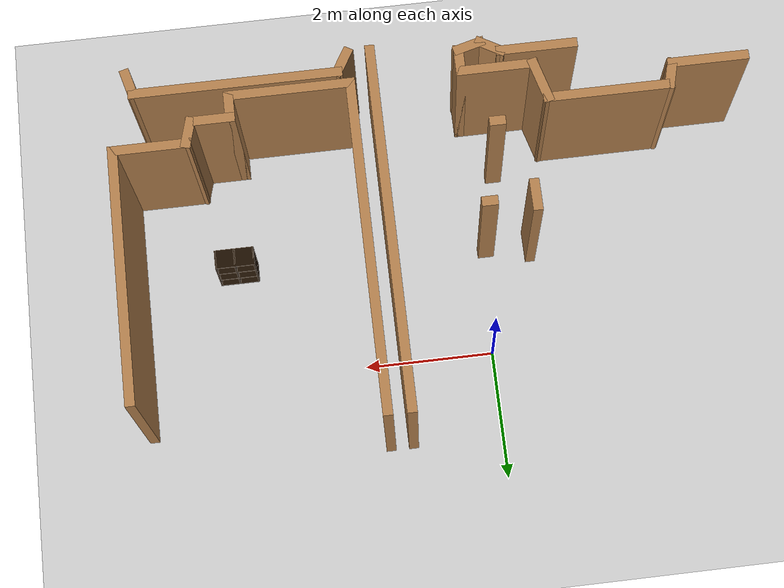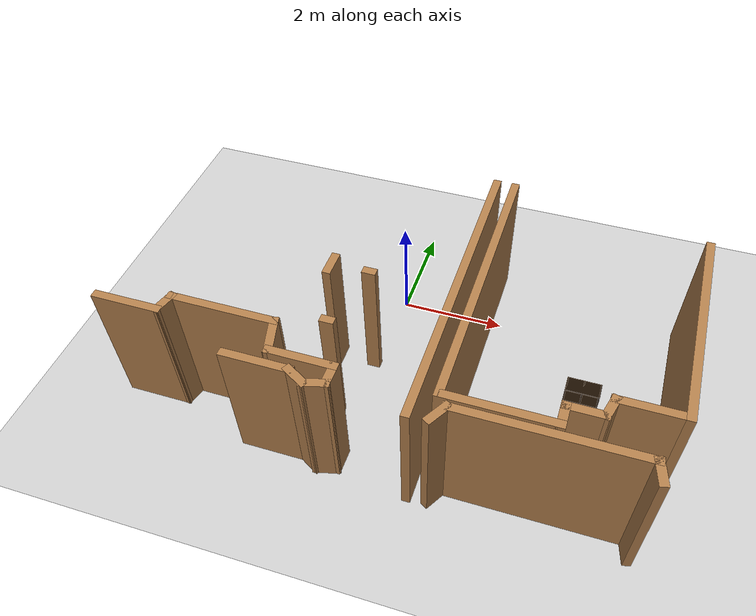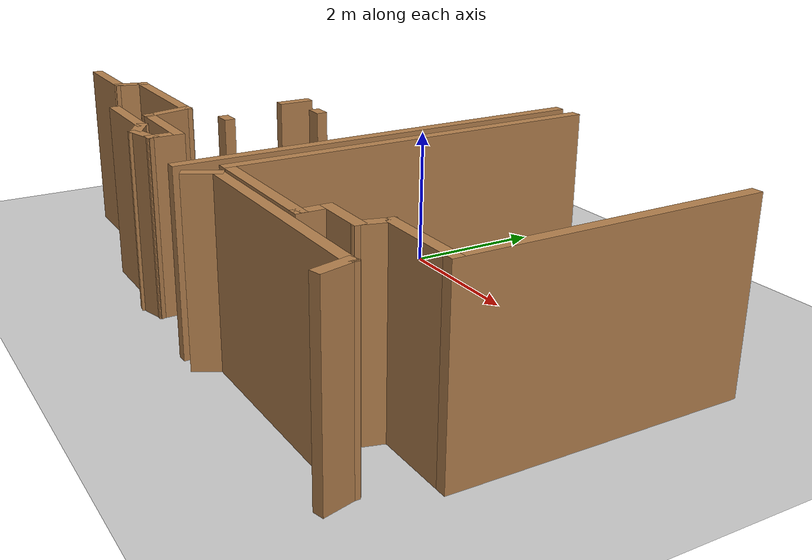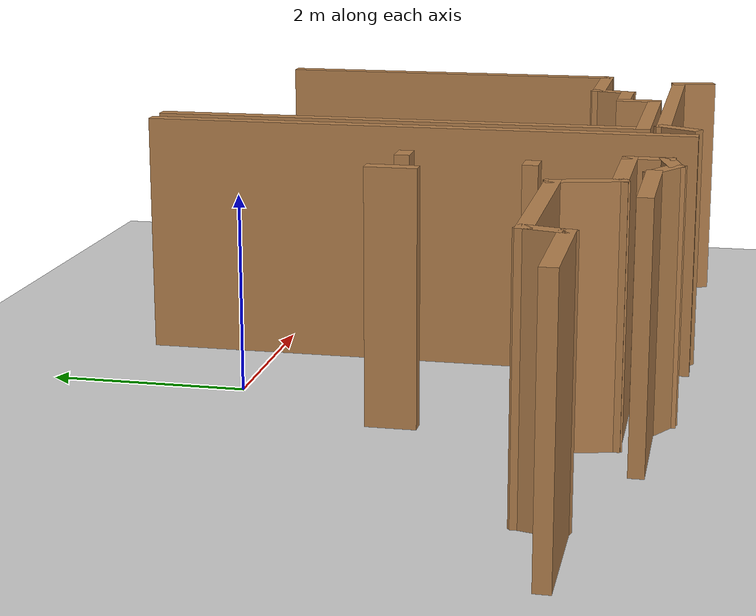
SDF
<sdf version="1.6">
 <world name="default">
  <model name="ground_plane">
   <static>1</static>
   <link name="link">
    <collision name="collision">
     <geometry><plane><normal>0 0 1</normal><size>100 100</size></plane></geometry>
     <surface><friction><ode><mu>100</mu><mu2>50</mu2></ode></friction></surface>
    </collision>
    <visual name="visual">
     <cast_shadows>0</cast_shadows>
     <geometry><plane><normal>0 0 1</normal><size>100 100</size></plane></geometry>
     <material>
      <script><uri>file://media/materials/scripts/gazebo.material</uri><name>Gazebo/Grey</name></script>
     </material>
    </visual>
   </link>
  </model>
  <model name="map_31">
   <link name="Wall_132">
    <pose>-1.39156 -1.38804 0 0 0 -1.5708</pose>
    <visual name="Wall_132_Visual">
     <pose>0 0 1.25 0 -0 0</pose>
     <geometry><box><size>0.5 0.15 2.5</size></box></geometry>
     <material>
      <script><uri>file://media/materials/scripts/gazebo.material</uri><name>Gazebo/Wood</name></script>
      <ambient>1 1 1 1</ambient>
      <shader type="pixel"/>
     </material>
     <meta><layer>0</layer></meta>
    </visual>
    <collision name="Wall_132_Collision">
     <pose>0 0 1.25 0 -0 0</pose>
     <geometry><box><size>0.5 0.15 2.5</size></box></geometry>
     <surface>
      <friction>
       <ode><mu>1</mu><mu2>1</mu2><fdir1>0 0 0</fdir1><slip1>0</slip1><slip2>0</slip2></ode>
       <torsional>
        <coefficient>1</coefficient>
        <patch_radius>0</patch_radius>
        <surface_radius>0</surface_radius>
        <use_patch_radius>1</use_patch_radius>
        <ode><slip>0</slip></ode>
       </torsional>
      </friction>
      <bounce><restitution_coefficient>0</restitution_coefficient><threshold>1e+06</threshold></bounce>
      <contact>
       <collide_without_contact>0</collide_without_contact>
       <collide_without_contact_bitmask>1</collide_without_contact_bitmask>
       <collide_bitmask>1</collide_bitmask>
       <ode>
        <soft_cfm>0</soft_cfm>
        <soft_erp>0.2</soft_erp>
        <kp>1e+13</kp>
        <kd>1</kd>
        <max_vel>0.01</max_vel>
        <min_depth>0</min_depth>
       </ode>
       <bullet>
        <split_impulse>1</split_impulse>
        <split_impulse_penetration_threshold>-0.01</split_impulse_penetration_threshold>
        <soft_cfm>0</soft_cfm>
        <soft_erp>0.2</soft_erp>
        <kp>1e+13</kp>
        <kd>1</kd>
       </bullet>
      </contact>
     </surface>
    </collision>
   </link>
   <link name="Wall_134">
    <pose>-0.699161 -1.36599 0 0 -0 0</pose>
    <visual name="Wall_134_Visual">
     <pose>0 0 1.25 0 -0 0</pose>
     <geometry><box><size>0.25 0.15 2.5</size></box></geometry>
     <material>
      <script><uri>file://media/materials/scripts/gazebo.material</uri><name>Gazebo/Wood</name></script>
      <ambient>1 1 1 1</ambient>
      <shader type="pixel"/>
     </material>
     <meta><layer>0</layer></meta>
    </visual>
    <collision name="Wall_134_Collision">
     <pose>0 0 1.25 0 -0 0</pose>
     <geometry><box><size>0.25 0.15 2.5</size></box></geometry>
     <surface>
      <friction>
       <ode><mu>1</mu><mu2>1</mu2><fdir1>0 0 0</fdir1><slip1>0</slip1><slip2>0</slip2></ode>
       <torsional>
        <coefficient>1</coefficient>
        <patch_radius>0</patch_radius>
        <surface_radius>0</surface_radius>
        <use_patch_radius>1</use_patch_radius>
        <ode><slip>0</slip></ode>
       </torsional>
      </friction>
      <bounce><restitution_coefficient>0</restitution_coefficient><threshold>1e+06</threshold></bounce>
      <contact>
       <collide_without_contact>0</collide_without_contact>
       <collide_without_contact_bitmask>1</collide_without_contact_bitmask>
       <collide_bitmask>1</collide_bitmask>
       <ode>
        <soft_cfm>0</soft_cfm>
        <soft_erp>0.2</soft_erp>
        <kp>1e+13</kp>
        <kd>1</kd>
        <max_vel>0.01</max_vel>
        <min_depth>0</min_depth>
       </ode>
       <bullet>
        <split_impulse>1</split_impulse>
        <split_impulse_penetration_threshold>-0.01</split_impulse_penetration_threshold>
        <soft_cfm>0</soft_cfm>
        <soft_erp>0.2</soft_erp>
        <kp>1e+13</kp>
        <kd>1</kd>
       </bullet>
      </contact>
     </surface>
    </collision>
   </link>
   <link name="Wall_136">
    <pose>-0.974473 -2.62019 0 0 -0 0</pose>
    <visual name="Wall_136_Visual">
     <pose>0 0 1.25 0 -0 0</pose>
     <geometry><box><size>0.25 0.15 2.5</size></box></geometry>
     <material>
      <script><uri>file://media/materials/scripts/gazebo.material</uri><name>Gazebo/Wood</name></script>
      <ambient>1 1 1 1</ambient>
      <shader type="pixel"/>
     </material>
     <meta><layer>0</layer></meta>
    </visual>
    <collision name="Wall_136_Collision">
     <pose>0 0 1.25 0 -0 0</pose>
     <geometry><box><size>0.25 0.15 2.5</size></box></geometry>
     <surface>
      <friction>
       <ode><mu>1</mu><mu2>1</mu2><fdir1>0 0 0</fdir1><slip1>0</slip1><slip2>0</slip2></ode>
       <torsional>
        <coefficient>1</coefficient>
        <patch_radius>0</patch_radius>
        <surface_radius>0</surface_radius>
        <use_patch_radius>1</use_patch_radius>
        <ode><slip>0</slip></ode>
       </torsional>
      </friction>
      <bounce><restitution_coefficient>0</restitution_coefficient><threshold>1e+06</threshold></bounce>
      <contact>
       <collide_without_contact>0</collide_without_contact>
       <collide_without_contact_bitmask>1</collide_without_contact_bitmask>
       <collide_bitmask>1</collide_bitmask>
       <ode>
        <soft_cfm>0</soft_cfm>
        <soft_erp>0.2</soft_erp>
        <kp>1e+13</kp>
        <kd>1</kd>
        <max_vel>0.01</max_vel>
        <min_depth>0</min_depth>
       </ode>
       <bullet>
        <split_impulse>1</split_impulse>
        <split_impulse_penetration_threshold>-0.01</split_impulse_penetration_threshold>
        <soft_cfm>0</soft_cfm>
        <soft_erp>0.2</soft_erp>
        <kp>1e+13</kp>
        <kd>1</kd>
       </bullet>
      </contact>
     </surface>
    </collision>
   </link>
   <link name="Wall_19">
    <pose>-4.27415 -3.24506 0 0 -0 0</pose>
    <visual name="Wall_19_Visual">
     <pose>0 0 1.25 0 -0 0</pose>
     <geometry><box><size>1.25 0.15 2.5</size></box></geometry>
     <material>
      <script><uri>file://media/materials/scripts/gazebo.material</uri><name>Gazebo/Wood</name></script>
      <ambient>1 1 1 1</ambient>
      <shader type="pixel"/>
     </material>
     <meta><layer>0</layer></meta>
    </visual>
    <collision name="Wall_19_Collision">
     <pose>0 0 1.25 0 -0 0</pose>
     <geometry><box><size>1.25 0.15 2.5</size></box></geometry>
     <surface>
      <friction>
       <ode><mu>1</mu><mu2>1</mu2><fdir1>0 0 0</fdir1><slip1>0</slip1><slip2>0</slip2></ode>
       <torsional>
        <coefficient>1</coefficient>
        <patch_radius>0</patch_radius>
        <surface_radius>0</surface_radius>
        <use_patch_radius>1</use_patch_radius>
        <ode><slip>0</slip></ode>
       </torsional>
      </friction>
      <bounce><restitution_coefficient>0</restitution_coefficient><threshold>1e+06</threshold></bounce>
      <contact>
       <collide_without_contact>0</collide_without_contact>
       <collide_without_contact_bitmask>1</collide_without_contact_bitmask>
       <collide_bitmask>1</collide_bitmask>
       <ode>
        <soft_cfm>0</soft_cfm>
        <soft_erp>0.2</soft_erp>
        <kp>1e+13</kp>
        <kd>1</kd>
        <max_vel>0.01</max_vel>
        <min_depth>0</min_depth>
       </ode>
       <bullet>
        <split_impulse>1</split_impulse>
        <split_impulse_penetration_threshold>-0.01</split_impulse_penetration_threshold>
        <soft_cfm>0</soft_cfm>
        <soft_erp>0.2</soft_erp>
        <kp>1e+13</kp>
        <kd>1</kd>
       </bullet>
      </contact>
     </surface>
    </collision>
   </link>
   <link name="Wall_20">
    <pose>-3.67885 -3.07602 0 0 -0 1.309</pose>
    <visual name="Wall_20_Visual">
     <pose>0 0 1.25 0 -0 0</pose>
     <geometry><box><size>0.5 0.15 2.5</size></box></geometry>
     <material>
      <script><uri>file://media/materials/scripts/gazebo.material</uri><name>Gazebo/Wood</name></script>
      <ambient>1 1 1 1</ambient>
      <shader type="pixel"/>
     </material>
     <meta><layer>0</layer></meta>
    </visual>
    <collision name="Wall_20_Collision">
     <pose>0 0 1.25 0 -0 0</pose>
     <geometry><box><size>0.5 0.15 2.5</size></box></geometry>
     <surface>
      <friction>
       <ode><mu>1</mu><mu2>1</mu2><fdir1>0 0 0</fdir1><slip1>0</slip1><slip2>0</slip2></ode>
       <torsional>
        <coefficient>1</coefficient>
        <patch_radius>0</patch_radius>
        <surface_radius>0</surface_radius>
        <use_patch_radius>1</use_patch_radius>
        <ode><slip>0</slip></ode>
       </torsional>
      </friction>
      <bounce><restitution_coefficient>0</restitution_coefficient><threshold>1e+06</threshold></bounce>
      <contact>
       <collide_without_contact>0</collide_without_contact>
       <collide_without_contact_bitmask>1</collide_without_contact_bitmask>
       <collide_bitmask>1</collide_bitmask>
       <ode>
        <soft_cfm>0</soft_cfm>
        <soft_erp>0.2</soft_erp>
        <kp>1e+13</kp>
        <kd>1</kd>
        <max_vel>0.01</max_vel>
        <min_depth>0</min_depth>
       </ode>
       <bullet>
        <split_impulse>1</split_impulse>
        <split_impulse_penetration_threshold>-0.01</split_impulse_penetration_threshold>
        <soft_cfm>0</soft_cfm>
        <soft_erp>0.2</soft_erp>
        <kp>1e+13</kp>
        <kd>1</kd>
       </bullet>
      </contact>
     </surface>
    </collision>
   </link>
   <link name="Wall_21">
    <pose>-2.70856 -2.90698 0 0 -0 0</pose>
    <visual name="Wall_21_Visual">
     <pose>0 0 1.25 0 -0 0</pose>
     <geometry><box><size>2 0.15 2.5</size></box></geometry>
     <material>
      <script><uri>file://media/materials/scripts/gazebo.material</uri><name>Gazebo/Wood</name></script>
      <ambient>1 1 1 1</ambient>
      <shader type="pixel"/>
     </material>
     <meta><layer>0</layer></meta>
    </visual>
    <collision name="Wall_21_Collision">
     <pose>0 0 1.25 0 -0 0</pose>
     <geometry><box><size>2 0.15 2.5</size></box></geometry>
     <surface>
      <friction>
       <ode><mu>1</mu><mu2>1</mu2><fdir1>0 0 0</fdir1><slip1>0</slip1><slip2>0</slip2></ode>
       <torsional>
        <coefficient>1</coefficient>
        <patch_radius>0</patch_radius>
        <surface_radius>0</surface_radius>
        <use_patch_radius>1</use_patch_radius>
        <ode><slip>0</slip></ode>
       </torsional>
      </friction>
      <bounce><restitution_coefficient>0</restitution_coefficient><threshold>1e+06</threshold></bounce>
      <contact>
       <collide_without_contact>0</collide_without_contact>
       <collide_without_contact_bitmask>1</collide_without_contact_bitmask>
       <collide_bitmask>1</collide_bitmask>
       <ode>
        <soft_cfm>0</soft_cfm>
        <soft_erp>0.2</soft_erp>
        <kp>1e+13</kp>
        <kd>1</kd>
        <max_vel>0.01</max_vel>
        <min_depth>0</min_depth>
       </ode>
       <bullet>
        <split_impulse>1</split_impulse>
        <split_impulse_penetration_threshold>-0.01</split_impulse_penetration_threshold>
        <soft_cfm>0</soft_cfm>
        <soft_erp>0.2</soft_erp>
        <kp>1e+13</kp>
        <kd>1</kd>
       </bullet>
      </contact>
     </surface>
    </collision>
   </link>
   <link name="Wall_22">
    <pose>-1.70591 -3.19676 0 0 0 -1.309</pose>
    <visual name="Wall_22_Visual">
     <pose>0 0 1.25 0 -0 0</pose>
     <geometry><box><size>0.75 0.15 2.5</size></box></geometry>
     <material>
      <script><uri>file://media/materials/scripts/gazebo.material</uri><name>Gazebo/Wood</name></script>
      <ambient>1 1 1 1</ambient>
      <shader type="pixel"/>
     </material>
     <meta><layer>0</layer></meta>
    </visual>
    <collision name="Wall_22_Collision">
     <pose>0 0 1.25 0 -0 0</pose>
     <geometry><box><size>0.75 0.15 2.5</size></box></geometry>
     <surface>
      <friction>
       <ode><mu>1</mu><mu2>1</mu2><fdir1>0 0 0</fdir1><slip1>0</slip1><slip2>0</slip2></ode>
       <torsional>
        <coefficient>1</coefficient>
        <patch_radius>0</patch_radius>
        <surface_radius>0</surface_radius>
        <use_patch_radius>1</use_patch_radius>
        <ode><slip>0</slip></ode>
       </torsional>
      </friction>
      <bounce><restitution_coefficient>0</restitution_coefficient><threshold>1e+06</threshold></bounce>
      <contact>
       <collide_without_contact>0</collide_without_contact>
       <collide_without_contact_bitmask>1</collide_without_contact_bitmask>
       <collide_bitmask>1</collide_bitmask>
       <ode>
        <soft_cfm>0</soft_cfm>
        <soft_erp>0.2</soft_erp>
        <kp>1e+13</kp>
        <kd>1</kd>
        <max_vel>0.01</max_vel>
        <min_depth>0</min_depth>
       </ode>
       <bullet>
        <split_impulse>1</split_impulse>
        <split_impulse_penetration_threshold>-0.01</split_impulse_penetration_threshold>
        <soft_cfm>0</soft_cfm>
        <soft_erp>0.2</soft_erp>
        <kp>1e+13</kp>
        <kd>1</kd>
       </bullet>
      </contact>
     </surface>
    </collision>
   </link>
   <link name="Wall_23">
    <pose>-1.07827 -3.48654 0 0 -0 0</pose>
    <visual name="Wall_23_Visual">
     <pose>0 0 1.25 0 -0 0</pose>
     <geometry><box><size>1.25 0.15 2.5</size></box></geometry>
     <material>
      <script><uri>file://media/materials/scripts/gazebo.material</uri><name>Gazebo/Wood</name></script>
      <ambient>1 1 1 1</ambient>
      <shader type="pixel"/>
     </material>
     <meta><layer>0</layer></meta>
    </visual>
    <collision name="Wall_23_Collision">
     <pose>0 0 1.25 0 -0 0</pose>
     <geometry><box><size>1.25 0.15 2.5</size></box></geometry>
     <surface>
      <friction>
       <ode><mu>1</mu><mu2>1</mu2><fdir1>0 0 0</fdir1><slip1>0</slip1><slip2>0</slip2></ode>
       <torsional>
        <coefficient>1</coefficient>
        <patch_radius>0</patch_radius>
        <surface_radius>0</surface_radius>
        <use_patch_radius>1</use_patch_radius>
        <ode><slip>0</slip></ode>
       </torsional>
      </friction>
      <bounce><restitution_coefficient>0</restitution_coefficient><threshold>1e+06</threshold></bounce>
      <contact>
       <collide_without_contact>0</collide_without_contact>
       <collide_without_contact_bitmask>1</collide_without_contact_bitmask>
       <collide_bitmask>1</collide_bitmask>
       <ode>
        <soft_cfm>0</soft_cfm>
        <soft_erp>0.2</soft_erp>
        <kp>1e+13</kp>
        <kd>1</kd>
        <max_vel>0.01</max_vel>
        <min_depth>0</min_depth>
       </ode>
       <bullet>
        <split_impulse>1</split_impulse>
        <split_impulse_penetration_threshold>-0.01</split_impulse_penetration_threshold>
        <soft_cfm>0</soft_cfm>
        <soft_erp>0.2</soft_erp>
        <kp>1e+13</kp>
        <kd>1</kd>
       </bullet>
      </contact>
     </surface>
    </collision>
   </link>
   <link name="Wall_24">
    <pose>-0.528269 -3.66154 0 0 0 -1.5708</pose>
    <visual name="Wall_24_Visual">
     <pose>0 0 1.25 0 -0 0</pose>
     <geometry><box><size>0.5 0.15 2.5</size></box></geometry>
     <material>
      <script><uri>file://media/materials/scripts/gazebo.material</uri><name>Gazebo/Wood</name></script>
      <ambient>1 1 1 1</ambient>
      <shader type="pixel"/>
     </material>
     <meta><layer>0</layer></meta>
    </visual>
    <collision name="Wall_24_Collision">
     <pose>0 0 1.25 0 -0 0</pose>
     <geometry><box><size>0.5 0.15 2.5</size></box></geometry>
     <surface>
      <friction>
       <ode><mu>1</mu><mu2>1</mu2><fdir1>0 0 0</fdir1><slip1>0</slip1><slip2>0</slip2></ode>
       <torsional>
        <coefficient>1</coefficient>
        <patch_radius>0</patch_radius>
        <surface_radius>0</surface_radius>
        <use_patch_radius>1</use_patch_radius>
        <ode><slip>0</slip></ode>
       </torsional>
      </friction>
      <bounce><restitution_coefficient>0</restitution_coefficient><threshold>1e+06</threshold></bounce>
      <contact>
       <collide_without_contact>0</collide_without_contact>
       <collide_without_contact_bitmask>1</collide_without_contact_bitmask>
       <collide_bitmask>1</collide_bitmask>
       <ode>
        <soft_cfm>0</soft_cfm>
        <soft_erp>0.2</soft_erp>
        <kp>1e+13</kp>
        <kd>1</kd>
        <max_vel>0.01</max_vel>
        <min_depth>0</min_depth>
       </ode>
       <bullet>
        <split_impulse>1</split_impulse>
        <split_impulse_penetration_threshold>-0.01</split_impulse_penetration_threshold>
        <soft_cfm>0</soft_cfm>
        <soft_erp>0.2</soft_erp>
        <kp>1e+13</kp>
        <kd>1</kd>
       </bullet>
      </contact>
     </surface>
    </collision>
   </link>
   <link name="Wall_25">
    <pose>-0.697306 -3.88183 0 0 0 -2.87979</pose>
    <visual name="Wall_25_Visual">
     <pose>0 0 1.25 0 -0 0</pose>
     <geometry><box><size>0.5 0.15 2.5</size></box></geometry>
     <material>
      <script><uri>file://media/materials/scripts/gazebo.material</uri><name>Gazebo/Wood</name></script>
      <ambient>1 1 1 1</ambient>
      <shader type="pixel"/>
     </material>
     <meta><layer>0</layer></meta>
    </visual>
    <collision name="Wall_25_Collision">
     <pose>0 0 1.25 0 -0 0</pose>
     <geometry><box><size>0.5 0.15 2.5</size></box></geometry>
     <surface>
      <friction>
       <ode><mu>1</mu><mu2>1</mu2><fdir1>0 0 0</fdir1><slip1>0</slip1><slip2>0</slip2></ode>
       <torsional>
        <coefficient>1</coefficient>
        <patch_radius>0</patch_radius>
        <surface_radius>0</surface_radius>
        <use_patch_radius>1</use_patch_radius>
        <ode><slip>0</slip></ode>
       </torsional>
      </friction>
      <bounce><restitution_coefficient>0</restitution_coefficient><threshold>1e+06</threshold></bounce>
      <contact>
       <collide_without_contact>0</collide_without_contact>
       <collide_without_contact_bitmask>1</collide_without_contact_bitmask>
       <collide_bitmask>1</collide_bitmask>
       <ode>
        <soft_cfm>0</soft_cfm>
        <soft_erp>0.2</soft_erp>
        <kp>1e+13</kp>
        <kd>1</kd>
        <max_vel>0.01</max_vel>
        <min_depth>0</min_depth>
       </ode>
       <bullet>
        <split_impulse>1</split_impulse>
        <split_impulse_penetration_threshold>-0.01</split_impulse_penetration_threshold>
        <soft_cfm>0</soft_cfm>
        <soft_erp>0.2</soft_erp>
        <kp>1e+13</kp>
        <kd>1</kd>
       </bullet>
      </contact>
     </surface>
    </collision>
   </link>
   <link name="Wall_26">
    <pose>-1.0179 -3.83963 0 0 -0 2.61799</pose>
    <visual name="Wall_26_Visual">
     <pose>0 0 1.25 0 -0 0</pose>
     <geometry><box><size>0.5 0.15 2.5</size></box></geometry>
     <material>
      <script><uri>file://media/materials/scripts/gazebo.material</uri><name>Gazebo/Wood</name></script>
      <ambient>1 1 1 1</ambient>
      <shader type="pixel"/>
     </material>
     <meta><layer>0</layer></meta>
    </visual>
    <collision name="Wall_26_Collision">
     <pose>0 0 1.25 0 -0 0</pose>
     <geometry><box><size>0.5 0.15 2.5</size></box></geometry>
     <surface>
      <friction>
       <ode><mu>1</mu><mu2>1</mu2><fdir1>0 0 0</fdir1><slip1>0</slip1><slip2>0</slip2></ode>
       <torsional>
        <coefficient>1</coefficient>
        <patch_radius>0</patch_radius>
        <surface_radius>0</surface_radius>
        <use_patch_radius>1</use_patch_radius>
        <ode><slip>0</slip></ode>
       </torsional>
      </friction>
      <bounce><restitution_coefficient>0</restitution_coefficient><threshold>1e+06</threshold></bounce>
      <contact>
       <collide_without_contact>0</collide_without_contact>
       <collide_without_contact_bitmask>1</collide_without_contact_bitmask>
       <collide_bitmask>1</collide_bitmask>
       <ode>
        <soft_cfm>0</soft_cfm>
        <soft_erp>0.2</soft_erp>
        <kp>1e+13</kp>
        <kd>1</kd>
        <max_vel>0.01</max_vel>
        <min_depth>0</min_depth>
       </ode>
       <bullet>
        <split_impulse>1</split_impulse>
        <split_impulse_penetration_threshold>-0.01</split_impulse_penetration_threshold>
        <soft_cfm>0</soft_cfm>
        <soft_erp>0.2</soft_erp>
        <kp>1e+13</kp>
        <kd>1</kd>
       </bullet>
      </contact>
     </surface>
    </collision>
   </link>
   <link name="Wall_27">
    <pose>-1.71945 -3.75213 0 0 -0 3.14159</pose>
    <visual name="Wall_27_Visual">
     <pose>0 0 1.25 0 -0 0</pose>
     <geometry><box><size>1.25 0.15 2.5</size></box></geometry>
     <material>
      <script><uri>file://media/materials/scripts/gazebo.material</uri><name>Gazebo/Wood</name></script>
      <ambient>1 1 1 1</ambient>
      <shader type="pixel"/>
     </material>
     <meta><layer>0</layer></meta>
    </visual>
    <collision name="Wall_27_Collision">
     <pose>0 0 1.25 0 -0 0</pose>
     <geometry><box><size>1.25 0.15 2.5</size></box></geometry>
     <surface>
      <friction>
       <ode><mu>1</mu><mu2>1</mu2><fdir1>0 0 0</fdir1><slip1>0</slip1><slip2>0</slip2></ode>
       <torsional>
        <coefficient>1</coefficient>
        <patch_radius>0</patch_radius>
        <surface_radius>0</surface_radius>
        <use_patch_radius>1</use_patch_radius>
        <ode><slip>0</slip></ode>
       </torsional>
      </friction>
      <bounce><restitution_coefficient>0</restitution_coefficient><threshold>1e+06</threshold></bounce>
      <contact>
       <collide_without_contact>0</collide_without_contact>
       <collide_without_contact_bitmask>1</collide_without_contact_bitmask>
       <collide_bitmask>1</collide_bitmask>
       <ode>
        <soft_cfm>0</soft_cfm>
        <soft_erp>0.2</soft_erp>
        <kp>1e+13</kp>
        <kd>1</kd>
        <max_vel>0.01</max_vel>
        <min_depth>0</min_depth>
       </ode>
       <bullet>
        <split_impulse>1</split_impulse>
        <split_impulse_penetration_threshold>-0.01</split_impulse_penetration_threshold>
        <soft_cfm>0</soft_cfm>
        <soft_erp>0.2</soft_erp>
        <kp>1e+13</kp>
        <kd>1</kd>
       </bullet>
      </contact>
     </surface>
    </collision>
   </link>
   <link name="Wall_78">
    <pose>4.4764 -3.86144 0 0 -0 1.8326</pose>
    <visual name="Wall_78_Visual">
     <pose>0 0 1.25 0 -0 0</pose>
     <geometry><box><size>0.5 0.15 2.5</size></box></geometry>
     <material>
      <script><uri>file://media/materials/scripts/gazebo.material</uri><name>Gazebo/Wood</name></script>
      <ambient>1 1 1 1</ambient>
      <shader type="pixel"/>
     </material>
     <meta><layer>0</layer></meta>
    </visual>
    <collision name="Wall_78_Collision">
     <pose>0 0 1.25 0 -0 0</pose>
     <geometry><box><size>0.5 0.15 2.5</size></box></geometry>
     <surface>
      <friction>
       <ode><mu>1</mu><mu2>1</mu2><fdir1>0 0 0</fdir1><slip1>0</slip1><slip2>0</slip2></ode>
       <torsional>
        <coefficient>1</coefficient>
        <patch_radius>0</patch_radius>
        <surface_radius>0</surface_radius>
        <use_patch_radius>1</use_patch_radius>
        <ode><slip>0</slip></ode>
       </torsional>
      </friction>
      <bounce><restitution_coefficient>0</restitution_coefficient><threshold>1e+06</threshold></bounce>
      <contact>
       <collide_without_contact>0</collide_without_contact>
       <collide_without_contact_bitmask>1</collide_without_contact_bitmask>
       <collide_bitmask>1</collide_bitmask>
       <ode>
        <soft_cfm>0</soft_cfm>
        <soft_erp>0.2</soft_erp>
        <kp>1e+13</kp>
        <kd>1</kd>
        <max_vel>0.01</max_vel>
        <min_depth>0</min_depth>
       </ode>
       <bullet>
        <split_impulse>1</split_impulse>
        <split_impulse_penetration_threshold>-0.01</split_impulse_penetration_threshold>
        <soft_cfm>0</soft_cfm>
        <soft_erp>0.2</soft_erp>
        <kp>1e+13</kp>
        <kd>1</kd>
       </bullet>
      </contact>
     </surface>
    </collision>
   </link>
   <link name="Wall_79">
    <pose>2.88111 -3.69241 0 0 -0 3.14159</pose>
    <visual name="Wall_79_Visual">
     <pose>0 0 1.25 0 -0 0</pose>
     <geometry><box><size>3.25 0.15 2.5</size></box></geometry>
     <material>
      <script><uri>file://media/materials/scripts/gazebo.material</uri><name>Gazebo/Wood</name></script>
      <ambient>1 1 1 1</ambient>
      <shader type="pixel"/>
     </material>
     <meta><layer>0</layer></meta>
    </visual>
    <collision name="Wall_79_Collision">
     <pose>0 0 1.25 0 -0 0</pose>
     <geometry><box><size>3.25 0.15 2.5</size></box></geometry>
     <surface>
      <friction>
       <ode><mu>1</mu><mu2>1</mu2><fdir1>0 0 0</fdir1><slip1>0</slip1><slip2>0</slip2></ode>
       <torsional>
        <coefficient>1</coefficient>
        <patch_radius>0</patch_radius>
        <surface_radius>0</surface_radius>
        <use_patch_radius>1</use_patch_radius>
        <ode><slip>0</slip></ode>
       </torsional>
      </friction>
      <bounce><restitution_coefficient>0</restitution_coefficient><threshold>1e+06</threshold></bounce>
      <contact>
       <collide_without_contact>0</collide_without_contact>
       <collide_without_contact_bitmask>1</collide_without_contact_bitmask>
       <collide_bitmask>1</collide_bitmask>
       <ode>
        <soft_cfm>0</soft_cfm>
        <soft_erp>0.2</soft_erp>
        <kp>1e+13</kp>
        <kd>1</kd>
        <max_vel>0.01</max_vel>
        <min_depth>0</min_depth>
       </ode>
       <bullet>
        <split_impulse>1</split_impulse>
        <split_impulse_penetration_threshold>-0.01</split_impulse_penetration_threshold>
        <soft_cfm>0</soft_cfm>
        <soft_erp>0.2</soft_erp>
        <kp>1e+13</kp>
        <kd>1</kd>
       </bullet>
      </contact>
     </surface>
    </collision>
   </link>
   <link name="Wall_80">
    <pose>1.24361 -3.84396 0 0 0 -2.0944</pose>
    <visual name="Wall_80_Visual">
     <pose>0 0 1.25 0 -0 0</pose>
     <geometry><box><size>0.5 0.15 2.5</size></box></geometry>
     <material>
      <script><uri>file://media/materials/scripts/gazebo.material</uri><name>Gazebo/Wood</name></script>
      <ambient>1 1 1 1</ambient>
      <shader type="pixel"/>
     </material>
     <meta><layer>0</layer></meta>
    </visual>
    <collision name="Wall_80_Collision">
     <pose>0 0 1.25 0 -0 0</pose>
     <geometry><box><size>0.5 0.15 2.5</size></box></geometry>
     <surface>
      <friction>
       <ode><mu>1</mu><mu2>1</mu2><fdir1>0 0 0</fdir1><slip1>0</slip1><slip2>0</slip2></ode>
       <torsional>
        <coefficient>1</coefficient>
        <patch_radius>0</patch_radius>
        <surface_radius>0</surface_radius>
        <use_patch_radius>1</use_patch_radius>
        <ode><slip>0</slip></ode>
       </torsional>
      </friction>
      <bounce><restitution_coefficient>0</restitution_coefficient><threshold>1e+06</threshold></bounce>
      <contact>
       <collide_without_contact>0</collide_without_contact>
       <collide_without_contact_bitmask>1</collide_without_contact_bitmask>
       <collide_bitmask>1</collide_bitmask>
       <ode>
        <soft_cfm>0</soft_cfm>
        <soft_erp>0.2</soft_erp>
        <kp>1e+13</kp>
        <kd>1</kd>
        <max_vel>0.01</max_vel>
        <min_depth>0</min_depth>
       </ode>
       <bullet>
        <split_impulse>1</split_impulse>
        <split_impulse_penetration_threshold>-0.01</split_impulse_penetration_threshold>
        <soft_cfm>0</soft_cfm>
        <soft_erp>0.2</soft_erp>
        <kp>1e+13</kp>
        <kd>1</kd>
       </bullet>
      </contact>
     </surface>
    </collision>
   </link>
   <link name="Wall_82">
    <pose>0.806109 -1.19552 0 0 -0 1.5708</pose>
    <visual name="Wall_82_Visual">
     <pose>0 0 1.25 0 -0 0</pose>
     <geometry><box><size>5.75 0.15 2.5</size></box></geometry>
     <material>
      <script><uri>file://media/materials/scripts/gazebo.material</uri><name>Gazebo/Wood</name></script>
      <ambient>1 1 1 1</ambient>
      <shader type="pixel"/>
     </material>
     <meta><layer>0</layer></meta>
    </visual>
    <collision name="Wall_82_Collision">
     <pose>0 0 1.25 0 -0 0</pose>
     <geometry><box><size>5.75 0.15 2.5</size></box></geometry>
     <surface>
      <friction>
       <ode><mu>1</mu><mu2>1</mu2><fdir1>0 0 0</fdir1><slip1>0</slip1><slip2>0</slip2></ode>
       <torsional>
        <coefficient>1</coefficient>
        <patch_radius>0</patch_radius>
        <surface_radius>0</surface_radius>
        <use_patch_radius>1</use_patch_radius>
        <ode><slip>0</slip></ode>
       </torsional>
      </friction>
      <bounce><restitution_coefficient>0</restitution_coefficient><threshold>1e+06</threshold></bounce>
      <contact>
       <collide_without_contact>0</collide_without_contact>
       <collide_without_contact_bitmask>1</collide_without_contact_bitmask>
       <collide_bitmask>1</collide_bitmask>
       <ode>
        <soft_cfm>0</soft_cfm>
        <soft_erp>0.2</soft_erp>
        <kp>1e+13</kp>
        <kd>1</kd>
        <max_vel>0.01</max_vel>
        <min_depth>0</min_depth>
       </ode>
       <bullet>
        <split_impulse>1</split_impulse>
        <split_impulse_penetration_threshold>-0.01</split_impulse_penetration_threshold>
        <soft_cfm>0</soft_cfm>
        <soft_erp>0.2</soft_erp>
        <kp>1e+13</kp>
        <kd>1</kd>
       </bullet>
      </contact>
     </surface>
    </collision>
   </link>
   <link name="Wall_86">
    <pose>1.15611 -0.945518 0 0 0 -1.5708</pose>
    <visual name="Wall_86_Visual">
     <pose>0 0 1.25 0 -0 0</pose>
     <geometry><box><size>5.25 0.15 2.5</size></box></geometry>
     <material>
      <script><uri>file://media/materials/scripts/gazebo.material</uri><name>Gazebo/Wood</name></script>
      <ambient>1 1 1 1</ambient>
      <shader type="pixel"/>
     </material>
     <meta><layer>0</layer></meta>
    </visual>
    <collision name="Wall_86_Collision">
     <pose>0 0 1.25 0 -0 0</pose>
     <geometry><box><size>5.25 0.15 2.5</size></box></geometry>
     <surface>
      <friction>
       <ode><mu>1</mu><mu2>1</mu2><fdir1>0 0 0</fdir1><slip1>0</slip1><slip2>0</slip2></ode>
       <torsional>
        <coefficient>1</coefficient>
        <patch_radius>0</patch_radius>
        <surface_radius>0</surface_radius>
        <use_patch_radius>1</use_patch_radius>
        <ode><slip>0</slip></ode>
       </torsional>
      </friction>
      <bounce><restitution_coefficient>0</restitution_coefficient><threshold>1e+06</threshold></bounce>
      <contact>
       <collide_without_contact>0</collide_without_contact>
       <collide_without_contact_bitmask>1</collide_without_contact_bitmask>
       <collide_bitmask>1</collide_bitmask>
       <ode>
        <soft_cfm>0</soft_cfm>
        <soft_erp>0.2</soft_erp>
        <kp>1e+13</kp>
        <kd>1</kd>
        <max_vel>0.01</max_vel>
        <min_depth>0</min_depth>
       </ode>
       <bullet>
        <split_impulse>1</split_impulse>
        <split_impulse_penetration_threshold>-0.01</split_impulse_penetration_threshold>
        <soft_cfm>0</soft_cfm>
        <soft_erp>0.2</soft_erp>
        <kp>1e+13</kp>
        <kd>1</kd>
       </bullet>
      </contact>
     </surface>
    </collision>
   </link>
   <link name="Wall_87">
    <pose>2.08111 -3.49552 0 0 -0 0</pose>
    <visual name="Wall_87_Visual">
     <pose>0 0 1.25 0 -0 0</pose>
     <geometry><box><size>2 0.15 2.5</size></box></geometry>
     <material>
      <script><uri>file://media/materials/scripts/gazebo.material</uri><name>Gazebo/Wood</name></script>
      <ambient>1 1 1 1</ambient>
      <shader type="pixel"/>
     </material>
     <meta><layer>0</layer></meta>
    </visual>
    <collision name="Wall_87_Collision">
     <pose>0 0 1.25 0 -0 0</pose>
     <geometry><box><size>2 0.15 2.5</size></box></geometry>
     <surface>
      <friction>
       <ode><mu>1</mu><mu2>1</mu2><fdir1>0 0 0</fdir1><slip1>0</slip1><slip2>0</slip2></ode>
       <torsional>
        <coefficient>1</coefficient>
        <patch_radius>0</patch_radius>
        <surface_radius>0</surface_radius>
        <use_patch_radius>1</use_patch_radius>
        <ode><slip>0</slip></ode>
       </torsional>
      </friction>
      <bounce><restitution_coefficient>0</restitution_coefficient><threshold>1e+06</threshold></bounce>
      <contact>
       <collide_without_contact>0</collide_without_contact>
       <collide_without_contact_bitmask>1</collide_without_contact_bitmask>
       <collide_bitmask>1</collide_bitmask>
       <ode>
        <soft_cfm>0</soft_cfm>
        <soft_erp>0.2</soft_erp>
        <kp>1e+13</kp>
        <kd>1</kd>
        <max_vel>0.01</max_vel>
        <min_depth>0</min_depth>
       </ode>
       <bullet>
        <split_impulse>1</split_impulse>
        <split_impulse_penetration_threshold>-0.01</split_impulse_penetration_threshold>
        <soft_cfm>0</soft_cfm>
        <soft_erp>0.2</soft_erp>
        <kp>1e+13</kp>
        <kd>1</kd>
       </bullet>
      </contact>
     </surface>
    </collision>
   </link>
   <link name="Wall_88">
    <pose>3.00611 -3.32052 0 0 -0 1.5708</pose>
    <visual name="Wall_88_Visual">
     <pose>0 0 1.25 0 -0 0</pose>
     <geometry><box><size>0.5 0.15 2.5</size></box></geometry>
     <material>
      <script><uri>file://media/materials/scripts/gazebo.material</uri><name>Gazebo/Wood</name></script>
      <ambient>1 1 1 1</ambient>
      <shader type="pixel"/>
     </material>
     <meta><layer>0</layer></meta>
    </visual>
    <collision name="Wall_88_Collision">
     <pose>0 0 1.25 0 -0 0</pose>
     <geometry><box><size>0.5 0.15 2.5</size></box></geometry>
     <surface>
      <friction>
       <ode><mu>1</mu><mu2>1</mu2><fdir1>0 0 0</fdir1><slip1>0</slip1><slip2>0</slip2></ode>
       <torsional>
        <coefficient>1</coefficient>
        <patch_radius>0</patch_radius>
        <surface_radius>0</surface_radius>
        <use_patch_radius>1</use_patch_radius>
        <ode><slip>0</slip></ode>
       </torsional>
      </friction>
      <bounce><restitution_coefficient>0</restitution_coefficient><threshold>1e+06</threshold></bounce>
      <contact>
       <collide_without_contact>0</collide_without_contact>
       <collide_without_contact_bitmask>1</collide_without_contact_bitmask>
       <collide_bitmask>1</collide_bitmask>
       <ode>
        <soft_cfm>0</soft_cfm>
        <soft_erp>0.2</soft_erp>
        <kp>1e+13</kp>
        <kd>1</kd>
        <max_vel>0.01</max_vel>
        <min_depth>0</min_depth>
       </ode>
       <bullet>
        <split_impulse>1</split_impulse>
        <split_impulse_penetration_threshold>-0.01</split_impulse_penetration_threshold>
        <soft_cfm>0</soft_cfm>
        <soft_erp>0.2</soft_erp>
        <kp>1e+13</kp>
        <kd>1</kd>
       </bullet>
      </contact>
     </surface>
    </collision>
   </link>
   <link name="Wall_89">
    <pose>3.30611 -3.14552 0 0 -0 0</pose>
    <visual name="Wall_89_Visual">
     <pose>0 0 1.25 0 -0 0</pose>
     <geometry><box><size>0.75 0.15 2.5</size></box></geometry>
     <material>
      <script><uri>file://media/materials/scripts/gazebo.material</uri><name>Gazebo/Wood</name></script>
      <ambient>1 1 1 1</ambient>
      <shader type="pixel"/>
     </material>
     <meta><layer>0</layer></meta>
    </visual>
    <collision name="Wall_89_Collision">
     <pose>0 0 1.25 0 -0 0</pose>
     <geometry><box><size>0.75 0.15 2.5</size></box></geometry>
     <surface>
      <friction>
       <ode><mu>1</mu><mu2>1</mu2><fdir1>0 0 0</fdir1><slip1>0</slip1><slip2>0</slip2></ode>
       <torsional>
        <coefficient>1</coefficient>
        <patch_radius>0</patch_radius>
        <surface_radius>0</surface_radius>
        <use_patch_radius>1</use_patch_radius>
        <ode><slip>0</slip></ode>
       </torsional>
      </friction>
      <bounce><restitution_coefficient>0</restitution_coefficient><threshold>1e+06</threshold></bounce>
      <contact>
       <collide_without_contact>0</collide_without_contact>
       <collide_without_contact_bitmask>1</collide_without_contact_bitmask>
       <collide_bitmask>1</collide_bitmask>
       <ode>
        <soft_cfm>0</soft_cfm>
        <soft_erp>0.2</soft_erp>
        <kp>1e+13</kp>
        <kd>1</kd>
        <max_vel>0.01</max_vel>
        <min_depth>0</min_depth>
       </ode>
       <bullet>
        <split_impulse>1</split_impulse>
        <split_impulse_penetration_threshold>-0.01</split_impulse_penetration_threshold>
        <soft_cfm>0</soft_cfm>
        <soft_erp>0.2</soft_erp>
        <kp>1e+13</kp>
        <kd>1</kd>
       </bullet>
      </contact>
     </surface>
    </collision>
   </link>
   <link name="Wall_90">
    <pose>3.6514 -2.97648 0 0 -0 1.309</pose>
    <visual name="Wall_90_Visual">
     <pose>0 0 1.25 0 -0 0</pose>
     <geometry><box><size>0.5 0.15 2.5</size></box></geometry>
     <material>
      <script><uri>file://media/materials/scripts/gazebo.material</uri><name>Gazebo/Wood</name></script>
      <ambient>1 1 1 1</ambient>
      <shader type="pixel"/>
     </material>
     <meta><layer>0</layer></meta>
    </visual>
    <collision name="Wall_90_Collision">
     <pose>0 0 1.25 0 -0 0</pose>
     <geometry><box><size>0.5 0.15 2.5</size></box></geometry>
     <surface>
      <friction>
       <ode><mu>1</mu><mu2>1</mu2><fdir1>0 0 0</fdir1><slip1>0</slip1><slip2>0</slip2></ode>
       <torsional>
        <coefficient>1</coefficient>
        <patch_radius>0</patch_radius>
        <surface_radius>0</surface_radius>
        <use_patch_radius>1</use_patch_radius>
        <ode><slip>0</slip></ode>
       </torsional>
      </friction>
      <bounce><restitution_coefficient>0</restitution_coefficient><threshold>1e+06</threshold></bounce>
      <contact>
       <collide_without_contact>0</collide_without_contact>
       <collide_without_contact_bitmask>1</collide_without_contact_bitmask>
       <collide_bitmask>1</collide_bitmask>
       <ode>
        <soft_cfm>0</soft_cfm>
        <soft_erp>0.2</soft_erp>
        <kp>1e+13</kp>
        <kd>1</kd>
        <max_vel>0.01</max_vel>
        <min_depth>0</min_depth>
       </ode>
       <bullet>
        <split_impulse>1</split_impulse>
        <split_impulse_penetration_threshold>-0.01</split_impulse_penetration_threshold>
        <soft_cfm>0</soft_cfm>
        <soft_erp>0.2</soft_erp>
        <kp>1e+13</kp>
        <kd>1</kd>
       </bullet>
      </contact>
     </surface>
    </collision>
   </link>
   <link name="Wall_91">
    <pose>4.24669 -2.80744 0 0 -0 0</pose>
    <visual name="Wall_91_Visual">
     <pose>0 0 1.25 0 -0 0</pose>
     <geometry><box><size>1.25 0.15 2.5</size></box></geometry>
     <material>
      <script><uri>file://media/materials/scripts/gazebo.material</uri><name>Gazebo/Wood</name></script>
      <ambient>1 1 1 1</ambient>
      <shader type="pixel"/>
     </material>
     <meta><layer>0</layer></meta>
    </visual>
    <collision name="Wall_91_Collision">
     <pose>0 0 1.25 0 -0 0</pose>
     <geometry><box><size>1.25 0.15 2.5</size></box></geometry>
     <surface>
      <friction>
       <ode><mu>1</mu><mu2>1</mu2><fdir1>0 0 0</fdir1><slip1>0</slip1><slip2>0</slip2></ode>
       <torsional>
        <coefficient>1</coefficient>
        <patch_radius>0</patch_radius>
        <surface_radius>0</surface_radius>
        <use_patch_radius>1</use_patch_radius>
        <ode><slip>0</slip></ode>
       </torsional>
      </friction>
      <bounce><restitution_coefficient>0</restitution_coefficient><threshold>1e+06</threshold></bounce>
      <contact>
       <collide_without_contact>0</collide_without_contact>
       <collide_without_contact_bitmask>1</collide_without_contact_bitmask>
       <collide_bitmask>1</collide_bitmask>
       <ode>
        <soft_cfm>0</soft_cfm>
        <soft_erp>0.2</soft_erp>
        <kp>1e+13</kp>
        <kd>1</kd>
        <max_vel>0.01</max_vel>
        <min_depth>0</min_depth>
       </ode>
       <bullet>
        <split_impulse>1</split_impulse>
        <split_impulse_penetration_threshold>-0.01</split_impulse_penetration_threshold>
        <soft_cfm>0</soft_cfm>
        <soft_erp>0.2</soft_erp>
        <kp>1e+13</kp>
        <kd>1</kd>
       </bullet>
      </contact>
     </surface>
    </collision>
   </link>
   <link name="Wall_92">
    <pose>4.79669 -0.882443 0 0 -0 1.5708</pose>
    <visual name="Wall_92_Visual">
     <pose>0 0 1.25 0 -0 0</pose>
     <geometry><box><size>4 0.15 2.5</size></box></geometry>
     <material>
      <script><uri>file://media/materials/scripts/gazebo.material</uri><name>Gazebo/Wood</name></script>
      <ambient>1 1 1 1</ambient>
      <shader type="pixel"/>
     </material>
     <meta><layer>0</layer></meta>
    </visual>
    <collision name="Wall_92_Collision">
     <pose>0 0 1.25 0 -0 0</pose>
     <geometry><box><size>4 0.15 2.5</size></box></geometry>
     <surface>
      <friction>
       <ode><mu>1</mu><mu2>1</mu2><fdir1>0 0 0</fdir1><slip1>0</slip1><slip2>0</slip2></ode>
       <torsional>
        <coefficient>1</coefficient>
        <patch_radius>0</patch_radius>
        <surface_radius>0</surface_radius>
        <use_patch_radius>1</use_patch_radius>
        <ode><slip>0</slip></ode>
       </torsional>
      </friction>
      <bounce><restitution_coefficient>0</restitution_coefficient><threshold>1e+06</threshold></bounce>
      <contact>
       <collide_without_contact>0</collide_without_contact>
       <collide_without_contact_bitmask>1</collide_without_contact_bitmask>
       <collide_bitmask>1</collide_bitmask>
       <ode>
        <soft_cfm>0</soft_cfm>
        <soft_erp>0.2</soft_erp>
        <kp>1e+13</kp>
        <kd>1</kd>
        <max_vel>0.01</max_vel>
        <min_depth>0</min_depth>
       </ode>
       <bullet>
        <split_impulse>1</split_impulse>
        <split_impulse_penetration_threshold>-0.01</split_impulse_penetration_threshold>
        <soft_cfm>0</soft_cfm>
        <soft_erp>0.2</soft_erp>
        <kp>1e+13</kp>
        <kd>1</kd>
       </bullet>
      </contact>
     </surface>
    </collision>
   </link>
   <static>1</static>
   <pose>0.59573 -0.305171 0 0 -0 0</pose>
  </model>
  <model name="6_Cube_StorageE">
   <link name="Wall_0">
    <pose>0 0 0.01 0 -0 0</pose>
    <inertial>
     <mass>1.6201</mass>
     <inertia><ixx>0.0119</ixx><iyy>0.0631</iyy><izz>0.0513</izz><ixy>0</ixy><ixz>0</ixz><iyz>0</iyz></inertia>
    </inertial>
    <collision name="Wall_0_Collision"><geometry><box><size>0.616 0.296 0.02</size></box></geometry></collision>
    <visual name="Wall_0_Visual">
     <geometry><box><size>0.616 0.296 0.02</size></box></geometry>
     <material>
      <script><uri>file://media/materials/scripts/gazebo.material</uri><name>Gazebo/Grey</name></script>
      <ambient>0.105882 0.0509804 0 1</ambient>
     </material>
    </visual>
   </link>
   <joint name="0_2" type="fixed">
    <pose>-0.308 0 0 0 -0 0</pose>
    <parent>Wall_2</parent>
    <child>Wall_0</child>
    <axis>
     <xyz>1 0 0</xyz>
     <use_parent_model_frame>0</use_parent_model_frame>
     <limit><lower>-1e+16</lower><upper>1e+16</upper></limit>
    </axis>
   </joint>
   <joint name="0_12" type="fixed">
    <parent>Wall_12</parent>
    <child>Wall_0</child>
    <axis>
     <xyz>0 0 1</xyz>
     <use_parent_model_frame>0</use_parent_model_frame>
     <limit><lower>-1e+16</lower><upper>1e+16</upper></limit>
    </axis>
   </joint>
   <joint name="0_4" type="fixed">
    <pose>0.308 0 0 0 -0 0</pose>
    <parent>Wall_4</parent>
    <child>Wall_0</child>
    <axis>
     <xyz>1 0 0</xyz>
     <use_parent_model_frame>0</use_parent_model_frame>
     <limit><lower>-1e+16</lower><upper>1e+16</upper></limit>
    </axis>
   </joint>
   <link name="Wall_10">
    <pose>0 0 0.61 0 -0 0</pose>
    <inertial>
     <mass>1.6201</mass>
     <inertia><ixx>0.0119</ixx><iyy>0.0631</iyy><izz>0.0513</izz><ixy>0</ixy><ixz>0</ixz><iyz>0</iyz></inertia>
    </inertial>
    <collision name="Wall_10_Collision"><geometry><box><size>0.616 0.296 0.02</size></box></geometry></collision>
    <visual name="Wall_10_Visual">
     <geometry><box><size>0.616 0.296 0.02</size></box></geometry>
     <material>
      <script><uri>file://media/materials/scripts/gazebo.material</uri><name>Gazebo/Grey</name></script>
      <ambient>0.105882 0.0509804 0 1</ambient>
     </material>
    </visual>
   </link>
   <joint name="10_2" type="fixed">
    <pose>-0.308 0 0 0 -0 0</pose>
    <parent>Wall_2</parent>
    <child>Wall_10</child>
    <axis>
     <xyz>1 0 0</xyz>
     <use_parent_model_frame>0</use_parent_model_frame>
     <limit><lower>-1e+16</lower><upper>1e+16</upper></limit>
    </axis>
   </joint>
   <joint name="10_12" type="fixed">
    <parent>Wall_12</parent>
    <child>Wall_10</child>
    <axis>
     <xyz>0 0 1</xyz>
     <use_parent_model_frame>0</use_parent_model_frame>
     <limit><lower>-1e+16</lower><upper>1e+16</upper></limit>
    </axis>
   </joint>
   <joint name="10_4" type="fixed">
    <pose>0.308 0 0 0 -0 0</pose>
    <parent>Wall_4</parent>
    <child>Wall_10</child>
    <axis>
     <xyz>1 0 0</xyz>
     <use_parent_model_frame>0</use_parent_model_frame>
     <limit><lower>-1e+16</lower><upper>1e+16</upper></limit>
    </axis>
   </joint>
   <link name="Wall_12">
    <pose>0 0 0.4575 0 -0 0</pose>
    <inertial>
     <mass>2.4065</mass>
     <inertia><ixx>0.0177</ixx><iyy>0.1855</iyy><izz>0.168</izz><ixy>0</ixy><ixz>0</ixz><iyz>0</iyz></inertia>
    </inertial>
    <collision name="Wall_12_Collision"><geometry><box><size>0.02 0.296 0.915</size></box></geometry></collision>
    <visual name="Wall_12_Visual">
     <geometry><box><size>0.02 0.296 0.915</size></box></geometry>
     <material>
      <script><uri>file://media/materials/scripts/gazebo.material</uri><name>Gazebo/Grey</name></script>
      <ambient>0.105882 0.0509804 0 1</ambient>
     </material>
    </visual>
   </link>
   <link name="Wall_2">
    <pose>-0.298 0 0.4575 0 -0 0</pose>
    <inertial>
     <mass>2.4065</mass>
     <inertia><ixx>0.0177</ixx><iyy>0.1855</iyy><izz>0.168</izz><ixy>0</ixy><ixz>0</ixz><iyz>0</iyz></inertia>
    </inertial>
    <collision name="Wall_2_Collision"><geometry><box><size>0.02 0.296 0.915</size></box></geometry></collision>
    <visual name="Wall_2_Visual">
     <geometry><box><size>0.02 0.296 0.915</size></box></geometry>
     <material>
      <script><uri>file://media/materials/scripts/gazebo.material</uri><name>Gazebo/Grey</name></script>
      <ambient>0.105882 0.0509804 0 1</ambient>
     </material>
    </visual>
   </link>
   <link name="Wall_4">
    <pose>0.298 0 0.4575 0 -0 0</pose>
    <inertial>
     <mass>2.4065</mass>
     <inertia><ixx>0.0177</ixx><iyy>0.1855</iyy><izz>0.168</izz><ixy>0</ixy><ixz>0</ixz><iyz>0</iyz></inertia>
    </inertial>
    <collision name="Wall_4_Collision"><geometry><box><size>0.02 0.296 0.915</size></box></geometry></collision>
    <visual name="Wall_4_Visual">
     <geometry><box><size>0.02 0.296 0.915</size></box></geometry>
     <material>
      <script><uri>file://media/materials/scripts/gazebo.material</uri><name>Gazebo/Grey</name></script>
      <ambient>0.105882 0.0509804 0 1</ambient>
     </material>
    </visual>
   </link>
   <link name="Wall_6">
    <pose>0 0 0.905 0 -0 0</pose>
    <inertial>
     <mass>1.6201</mass>
     <inertia><ixx>0.0119</ixx><iyy>0.0631</iyy><izz>0.0513</izz><ixy>0</ixy><ixz>0</ixz><iyz>0</iyz></inertia>
    </inertial>
    <collision name="Wall_6_Collision"><geometry><box><size>0.616 0.296 0.02</size></box></geometry></collision>
    <visual name="Wall_6_Visual">
     <geometry><box><size>0.616 0.296 0.02</size></box></geometry>
     <material>
      <script><uri>file://media/materials/scripts/gazebo.material</uri><name>Gazebo/Grey</name></script>
      <ambient>0.105882 0.0509804 0 1</ambient>
     </material>
    </visual>
   </link>
   <joint name="6_2" type="fixed">
    <pose>-0.308 0 0 0 -0 0</pose>
    <parent>Wall_2</parent>
    <child>Wall_6</child>
    <axis>
     <xyz>2 0 0</xyz>
     <use_parent_model_frame>0</use_parent_model_frame>
     <limit><lower>-1e+16</lower><upper>1e+16</upper></limit>
    </axis>
   </joint>
   <joint name="6_12" type="fixed">
    <parent>Wall_12</parent>
    <child>Wall_6</child>
    <axis>
     <xyz>0 0 1</xyz>
     <use_parent_model_frame>0</use_parent_model_frame>
     <limit><lower>-1e+16</lower><upper>1e+16</upper></limit>
    </axis>
   </joint>
   <joint name="6_4" type="fixed">
    <pose>0.308 0 0 0 -0 0</pose>
    <parent>Wall_4</parent>
    <child>Wall_6</child>
    <axis>
     <xyz>1 0 0</xyz>
     <use_parent_model_frame>0</use_parent_model_frame>
     <limit><lower>-1e+16</lower><upper>1e+16</upper></limit>
    </axis>
   </joint>
   <link name="Wall_8">
    <pose>0 0 0.305 0 -0 0</pose>
    <inertial>
     <mass>1.6201</mass>
     <inertia><ixx>0.0119</ixx><iyy>0.0631</iyy><izz>0.0513</izz><ixy>0</ixy><ixz>0</ixz><iyz>0</iyz></inertia>
    </inertial>
    <collision name="Wall_8_Collision"><geometry><box><size>0.616 0.296 0.02</size></box></geometry></collision>
    <visual name="Wall_8_Visual">
     <geometry><box><size>0.616 0.296 0.02</size></box></geometry>
     <material>
      <script><uri>file://media/materials/scripts/gazebo.material</uri><name>Gazebo/Grey</name></script>
      <ambient>0.105882 0.0509804 0 1</ambient>
     </material>
    </visual>
   </link>
   <joint name="8_2" type="fixed">
    <pose>-0.308 0 0 0 -0 0</pose>
    <parent>Wall_2</parent>
    <child>Wall_8</child>
    <axis>
     <xyz>1 0 0</xyz>
     <use_parent_model_frame>0</use_parent_model_frame>
     <limit><lower>-1e+16</lower><upper>1e+16</upper></limit>
    </axis>
   </joint>
   <joint name="8_12" type="fixed">
    <parent>Wall_12</parent>
    <child>Wall_8</child>
    <axis>
     <xyz>0 0 1</xyz>
     <use_parent_model_frame>0</use_parent_model_frame>
     <limit><lower>-1e+16</lower><upper>1e+16</upper></limit>
    </axis>
   </joint>
   <joint name="8_4" type="fixed">
    <pose>0.308 0 0 0 -0 0</pose>
    <parent>Wall_4</parent>
    <child>Wall_8</child>
    <axis>
     <xyz>1 0 0</xyz>
     <use_parent_model_frame>0</use_parent_model_frame>
     <limit><lower>-1e+16</lower><upper>1e+16</upper></limit>
    </axis>
   </joint>
   <static>1</static>
   <pose>3.84754 -1.76484 0 0 -0 0</pose>
  </model>
 </world>
</sdf>
